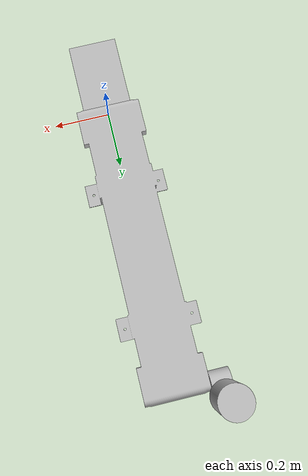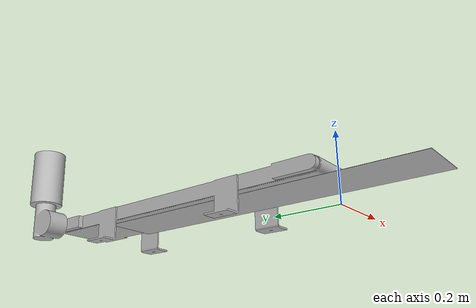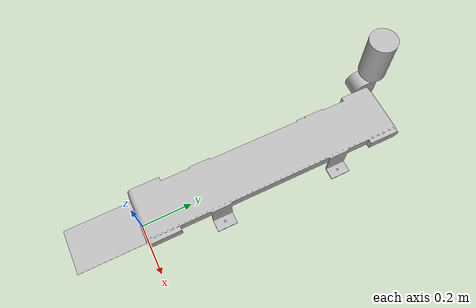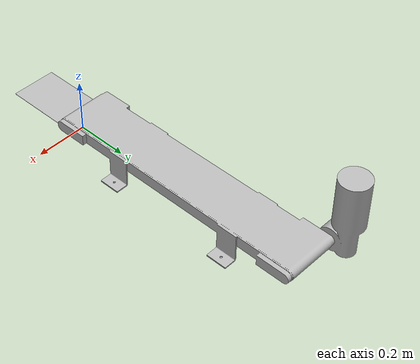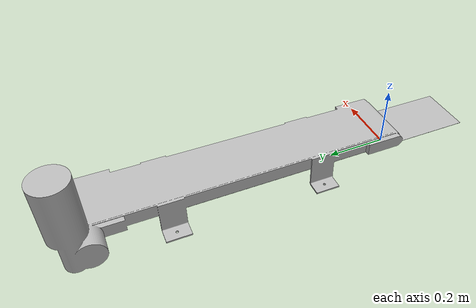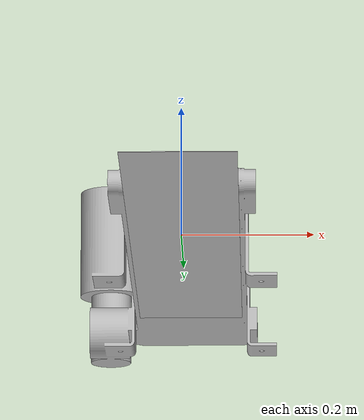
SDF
<?xml version='1.0'?>
<sdf version='1.6'>
<model name="conveyor_belt">
  <!-- Give the base link a unique name -->
  <link name="base">
    <pose>0 0 0 0 0 0</pose>
    <collision name="base_collision">
      <geometry>
        <mesh>
          <uri>model://Conveyor_Belt/meshes/conveyor_belt.dae</uri>
        </mesh>
      </geometry>
    </collision>

    <!-- The visual is mostly a copy of the collision -->
    <visual name="base_visual">
      <geometry>
        <mesh>
           <uri>model://Conveyor_Belt/meshes/conveyor_belt.dae</uri>
        </mesh>
      </geometry>
    </visual>
  </link>

  <!-- Give the base link a unique name -->
  <link name="moving_belt">
     <pose frame=''>0 0.255636 0.057374 0 -0 0</pose>
      <inertial>
        <mass>0.00015391</mass>
        <inertia>
          <ixx>1.37697e-05</ixx>
          <ixy>0</ixy>
          <ixz>0</ixz>
          <iyy>3.86034e-07</iyy>
          <iyz>0</iyz>
          <izz>1.41557e-05</izz>
        </inertia>
        <pose frame=''>0 0 0 0 -0 0</pose>
      </inertial>
    <collision name="moving_belt_collision">
        <geometry>
          <box>
            <size>0.173443 1.03615 0.000856</size>
          </box>
        </geometry>
    </collision>

    <!-- The visual is mostly a copy of the collision -->
    <visual name="moving_belt_visual">
        <geometry>
          <box>
            <size>0.173443 1.03615 0.000856</size>
          </box>
        </geometry>
    </visual>
  </link>
</model>
</sdf>
